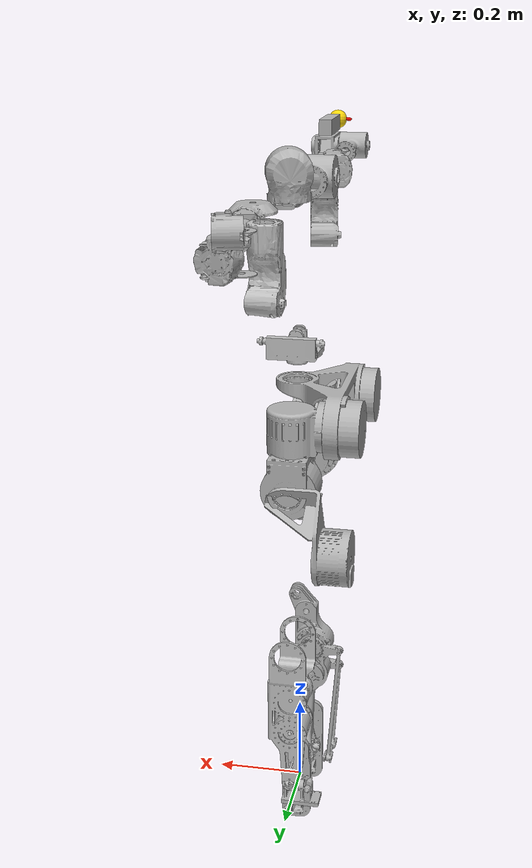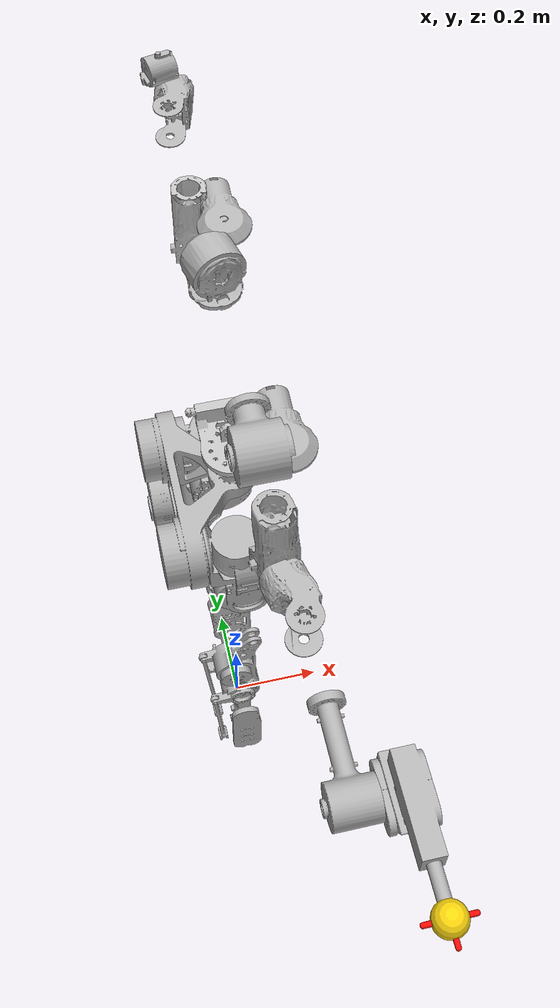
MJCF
<mujoco model="speedbot_v4_weld">
  <compiler angle="radian" meshdir="speedbot_v4/meshes/" />
  <option timestep="0.001" tolerance="1e-10" solver="Newton" jacobian="dense" cone="pyramidal" gravity="0 0 -9.81">
    <flag contact="enable" energy="enable" />
  </option>
  <size njmax="500" nconmax="1200" />
  <default>
    <light castshadow="false" />
    <geom rgba="0.784 0.784 0.784 1" />
    <default class="visual">
      <geom type="mesh" contype="0" conaffinity="0" group="1" density="0" />
    </default>
    <default class="collision">
      <geom contype="1" conaffinity="1" friction="1.0 0.3 0.3" margin="0.001" group="0" />
    </default>
    <joint damping="0.1" frictionloss="1" armature="0.01" />
  </default>
  <asset>
    <mesh name="base_link" content_type="model/stl" file="base_link.STL"/>
    <mesh name="left_hip_roll" content_type="model/stl" file="left_hip_roll.STL"/>
    <mesh name="left_hip_yaw" content_type="model/stl" file="left_hip_yaw.STL"/>
    <mesh name="left_hip_pitch" content_type="model/stl" file="left_hip_pitch.STL"/>
    <mesh name="left_knee" content_type="model/stl" file="left_knee.STL"/>
    <mesh name="left_ankle_pitch" content_type="model/stl" file="left_ankle_pitch.STL"/>
    <mesh name="left_ankle_roll" content_type="model/stl" file="left_ankle_roll.STL"/>
    <mesh name="right_hip_roll" content_type="model/stl" file="right_hip_roll.STL"/>
    <mesh name="right_hip_yaw" content_type="model/stl" file="right_hip_yaw.STL"/>
    <mesh name="right_hip_pitch" content_type="model/stl" file="right_hip_pitch.STL"/>
    <mesh name="right_knee" content_type="model/stl" file="right_knee.STL"/>
    <mesh name="right_ankle_pitch" content_type="model/stl" file="right_ankle_pitch.STL"/>
    <mesh name="right_ankle_roll" content_type="model/stl" file="right_ankle_roll.STL"/>
    <mesh name="waist_yaw" content_type="model/stl" file="waist_yaw.STL"/>
    <mesh name="left_shoulder_pitch" content_type="model/stl" file="left_shoulder_pitch.STL"/>
    <mesh name="left_shoulder_roll" content_type="model/stl" file="left_shoulder_roll.STL"/>
    <mesh name="left_shoulder_yaw" content_type="model/stl" file="left_shoulder_yaw.STL"/>
    <mesh name="left_elbow" content_type="model/stl" file="left_elbow.STL"/>
    <mesh name="left_wrist_roll" content_type="model/stl" file="left_wrist_roll.STL"/>
    <mesh name="right_shoulder_pitch" content_type="model/stl" file="right_shoulder_pitch.STL"/>
    <mesh name="right_shoulder_roll" content_type="model/stl" file="right_shoulder_roll.STL"/>
    <mesh name="right_shoulder_yaw" content_type="model/stl" file="right_shoulder_yaw.STL"/>
    <mesh name="right_elbow" content_type="model/stl" file="right_elbow.STL"/>
    <mesh name="right_wrist_roll" content_type="model/stl" file="right_wrist_roll.STL"/>
    <mesh name="welding_gun" content_type="model/stl" file="falan.STL"/>
  </asset>

  <worldbody>
    <body name="base_link" pos="0.0080635 0 1.003">
      <freejoint name="float_base" />
      <site name="imu" pos="0 0 0" quat="1 0 0 0" />
      <inertial pos="-0.1093135 -1.4179e-07 -0.041448" quat="0.68958 0.68958 0.156458 -0.156457" mass="7.4135" diaginertia="0.0292714 0.0262626 0.014902"/>
      <geom pos="-0.0080635 0 0" type="mesh" contype="0" conaffinity="0" group="1" density="0" rgba="0.69804 0.69804 0.69804 1" mesh="base_link"/>
      <geom pos="-0.0080635 0 0" type="mesh" rgba="0.69804 0.69804 0.69804 1" mesh="base_link"/>
      <body name="left_hip_roll" pos="-0.1245035 0.1225 -0.04795">
        <inertial pos="0.10837 -2.3489e-06 -0.020356" quat="-2.31903e-06 0.786727 -5.4744e-06 0.617301" mass="2.1827" diaginertia="0.00347587 0.0032228 0.00284013"/>
        <joint name="left_hip_roll_joint" pos="0 0 0" axis="1 0 0" range="-0.17 0.44" actuatorfrcrange="-267 267"/>
        <geom type="mesh" contype="0" conaffinity="0" group="1" density="0" rgba="0.69804 0.69804 0.69804 1" mesh="left_hip_roll"/>
        <body name="left_hip_yaw" pos="0.1155 0 -0.0182">
          <inertial pos="-0.00016271 -0.0040921 -0.1177" quat="0.705796 -0.0476295 0.0697462 0.703363" mass="3.3125" diaginertia="0.00629233 0.00531675 0.00516232"/>
          <joint name="left_hip_yaw_joint" pos="0 0 0" axis="0 0 1" range="-0.7 0.7" actuatorfrcrange="-121 121"/>
          <geom type="mesh" contype="0" conaffinity="0" group="1" density="0" rgba="0.69804 0.69804 0.69804 1" mesh="left_hip_yaw"/>
          <body name="left_hip_pitch" pos="0 -0.0015 -0.125">
            <inertial pos="0.0025393 0.0034884 -0.15511" quat="0.696148 -0.0392199 0.0223547 0.716477" mass="5.7187" diaginertia="0.0332183 0.0326321 0.00953413"/>
            <joint name="left_hip_pitch_joint" pos="0 0 0" axis="0 1 0" range="-1.34 1.83" actuatorfrcrange="-267 267"/>
            <geom type="mesh" contype="0" conaffinity="0" group="1" density="0" rgba="0.69804 0.69804 0.69804 1" mesh="left_hip_pitch"/>
            <body name="left_knee" pos="0 -0.034937 -0.4">
              <inertial pos="-0.017852 -6.7212e-06 -0.15577" quat="0.702401 2.77719e-05 -0.0026194 0.711777" mass="3.6902" diaginertia="0.0227294 0.0220441 0.00239045"/>
              <joint name="left_knee_joint" pos="0 0 0" axis="0 -1 0" range="-2.09 0.09" actuatorfrcrange="-267 267"/>
              <geom type="mesh" contype="0" conaffinity="0" group="1" density="0" rgba="0.75294 0.75294 0.75294 1" mesh="left_knee"/>
              <body name="left_ankle_pitch" pos="0 0.00043724 -0.387">
                <inertial pos="1.6609e-09 3.2596e-09 -6.0503e-09" quat="0.707107 0.707107 0 0" mass="0.09865" diaginertia="2.4782e-05 2.4168e-05 6.0596e-06"/>
                <joint name="left_ankle_pitch_joint" pos="0 0 0" axis="0 -1 0" range="-0.52 1.05" actuatorfrcrange="-42 42"/>
                <geom type="mesh" contype="0" conaffinity="0" group="1" density="0" rgba="0.69804 0.69804 0.69804 1" mesh="left_ankle_pitch"/>
                <body name="left_ankle_roll">
                  <inertial pos="0.039669 -5.3886e-08 -0.036778" quat="0 0.733534 0 0.679653" mass="0.60538" diaginertia="0.00265188 0.0025604 0.000326769"/>
                  <joint name="left_ankle_roll_joint" pos="0 0 0" axis="-1 0 0" range="-0.44 0.44" actuatorfrcrange="-42 42"/>
                  <geom type="mesh" contype="0" conaffinity="0" group="1" density="0" rgba="0.69804 0.69804 0.69804 1" mesh="left_ankle_roll"/>
                  <geom size="0.1125 0.04 0.0125" pos="0.046 0 -0.042" type="box" condim="4" friction="1 1 1" rgba="1 0 0 0"/>
                  <site name="lf-tc" type="box" size="0.106 0.041 0.026" pos="0.046 0 -0.042" rgba="0 1 0 0" />
                </body>
              </body>
            </body>
          </body>
        </body>
      </body>
      <body name="right_hip_roll" pos="-0.1245035 -0.1225 -0.04795">
        <inertial pos="0.10837 -2.3489e-06 -0.020356" quat="-2.31903e-06 0.786727 -5.4744e-06 0.617301" mass="2.1827" diaginertia="0.00347587 0.0032228 0.00284013"/>
        <joint name="right_hip_roll_joint" pos="0 0 0" axis="1 0 0" range="-0.44 0.17" actuatorfrcrange="-267 267"/>
        <geom type="mesh" contype="0" conaffinity="0" group="1" density="0" rgba="0.69804 0.69804 0.69804 1" mesh="right_hip_roll"/>
        <body name="right_hip_yaw" pos="0.1155 0 -0.0182">
          <inertial pos="-0.00016274 0.0040921 -0.1177" quat="0.703362 0.0697434 -0.0476322 0.705797" mass="3.3125" diaginertia="0.00629233 0.00531675 0.00516232"/>
          <joint name="right_hip_yaw_joint" pos="0 0 0" axis="0 0 1" range="-0.7 0.7" actuatorfrcrange="-121 121"/>
          <geom type="mesh" contype="0" conaffinity="0" group="1" density="0" rgba="0.69804 0.69804 0.69804 1" mesh="right_hip_yaw"/>
          <body name="right_hip_pitch" pos="0 0.0015 -0.125">
            <inertial pos="0.0025393 -0.0034884 -0.15511" quat="0.716393 0.0223445 -0.0392287 0.696235" mass="5.7187" diaginertia="0.0332183 0.0326321 0.0095343"/>
            <joint name="right_hip_pitch_joint" pos="0 0 0" axis="0 1 0" range="-1.34 1.83" actuatorfrcrange="-267 267"/>
            <geom type="mesh" contype="0" conaffinity="0" group="1" density="0" rgba="0.69804 0.69804 0.69804 1" mesh="right_hip_pitch"/>
            <body name="right_knee" pos="0 0.034937 -0.4">
              <inertial pos="-0.017852 6.7212e-06 -0.15577" quat="0.711798 -0.00262139 2.52241e-05 0.702379" mass="3.6902" diaginertia="0.0227294 0.0220441 0.00239045"/>
              <joint name="right_knee_joint" pos="0 0 0" axis="0 -1 0" range="-2.09 0.09" actuatorfrcrange="-267 267"/>
              <geom type="mesh" contype="0" conaffinity="0" group="1" density="0" rgba="0.69804 0.69804 0.69804 1" mesh="right_knee"/>
              <body name="right_ankle_pitch" pos="0 -0.00043724 -0.387">
                <inertial pos="1.6609e-09 3.2596e-09 -6.0503e-09" quat="0.707107 0.707107 0 0" mass="0.09865" diaginertia="2.4782e-05 2.4168e-05 6.0596e-06"/>
                <joint name="right_ankle_pitch_joint" pos="0 0 0" axis="0 -1 0" range="-0.52 1.05" actuatorfrcrange="-42 42"/>
                <geom type="mesh" contype="0" conaffinity="0" group="1" density="0" rgba="0.69804 0.69804 0.69804 1" mesh="right_ankle_pitch"/>
                <body name="right_ankle_roll">
                  <inertial pos="0.039669 -5.3901e-08 -0.036778" quat="0 0.733534 0 0.679653" mass="0.60538" diaginertia="0.00265188 0.0025604 0.000326769"/>
                  <joint name="right_ankle_roll_joint" pos="0 0 0" axis="-1 0 0" range="-0.44 0.44" actuatorfrcrange="-42 42"/>
                  <geom type="mesh" contype="0" conaffinity="0" group="1" density="0" rgba="0.69804 0.69804 0.69804 1" mesh="right_ankle_roll"/>
                  <geom size="0.1125 0.04 0.0125" pos="0.046 0 -0.042" type="box" condim="4" friction="1 1 1" rgba="1 0 0 0"/>
                  <site name="rf-tc" type="box" size="0.106 0.041 0.026" pos="0.046 0 -0.042" rgba="0 1 0 0" />
                </body>
              </body>
            </body>
          </body>
        </body>
      </body>
      <body name="waist_yaw" pos="0 0 0.0573">
        <inertial pos="0.001283 -7.589e-05 0.20559" quat="0.501725 0.497653 -0.502492 0.498112" mass="10.4394" diaginertia="0.033042 0.0323261 0.0304469"/>
        <geom type="mesh" contype="0" conaffinity="0" group="1" density="0" rgba="0.75294 0.75294 0.75294 1" mesh="waist_yaw"/>
        <geom type="mesh" rgba="0.75294 0.75294 0.75294 1" mesh="waist_yaw"/>
        <body name="upper_body_link" pos="0 0 0.3">
          <body name="left_shoulder_pitch" pos="0 0.098693 0.07088">
            <inertial pos="0.0091062 0.13568 0.00087007" quat="0.705814 0.705815 -0.0427311 -0.0427293" mass="1.4073" diaginertia="0.00186382 0.0017462 0.00138138"/>
            <joint name="left_shoulder_pitch_joint" pos="0 0 0" axis="0 1 0" range="-3.09 2.67" actuatorfrcrange="-60 60"/>
            <geom type="mesh" contype="0" conaffinity="0" group="1" density="0" rgba="0.69804 0.69804 0.69804 1" mesh="left_shoulder_pitch"/>
            <body name="left_shoulder_roll" pos="0.0444 0.14081 0.00087012">
              <inertial pos="-0.044206 0.091886 2.9541e-07" quat="0.434132 0.558013 -0.434293 0.558158" mass="1.0231" diaginertia="0.0013318 0.00131096 0.000682828"/>
              <joint name="left_shoulder_roll_joint" pos="0 0 0" axis="-1 0 0" range="-1.59 2.25" actuatorfrcrange="-60 60"/>
              <geom type="mesh" contype="0" conaffinity="0" group="1" density="0" rgba="0.69804 0.69804 0.69804 1" mesh="left_shoulder_roll"/>
              <body name="left_shoulder_yaw" pos="-0.0444 0.103 0">
                <inertial pos="-0.00062283 0.18132 0.008027" quat="0.38132 0.400028 -0.613332 0.564267" mass="1.222" diaginertia="0.00254591 0.00253872 0.00101317"/>
                <joint name="left_shoulder_yaw_joint" pos="0 0 0" axis="0 1 0" range="-2.62 2.62" actuatorfrcrange="-60 60"/>
                <geom type="mesh" contype="0" conaffinity="0" group="1" density="0" rgba="0.75294 0.75294 0.75294 1" mesh="left_shoulder_yaw"/>
                <body name="left_elbow" pos="0 0.197 0.0135">
                  <inertial pos="-4.9236e-08 0.080341 -0.013515" quat="0.791621 0.611013 -3.90561e-05 4.75426e-05" mass="0.73325" diaginertia="0.00086196 0.000834991 0.000390249"/>
                  <joint name="left_elbow_joint" pos="0 0 0" axis="0 0 1" range="-2.09 1.05" actuatorfrcrange="-40 40"/>
                  <geom type="mesh" contype="0" conaffinity="0" group="1" density="0" rgba="0.69804 0.69804 0.69804 1" mesh="left_elbow"/>
                  <body name="left_wrist_roll" pos="0 0.0896 -0.0135">
                    <inertial pos="0.0029058 0.16387 -1.135e-05" quat="0.518412 0.480333 -0.518971 0.48083" mass="0.63743" diaginertia="0.0011544 0.00112475 0.000340641"/>
                    <joint name="left_wrist_roll_joint" pos="0 0 0" axis="0 1 0" range="-1.97 1.97" actuatorfrcrange="-20 20"/>
                    <geom type="mesh" contype="0" conaffinity="0" group="1" density="0" rgba="0.69804 0.69804 0.69804 1" mesh="left_wrist_roll"/>
                  </body>
                </body>
              </body>
            </body>
          </body>
          <body name="right_shoulder_pitch" pos="0 -0.098693 0.07088">
            <inertial pos="0.0091062 -0.13568 0.00087017" quat="0.705814 0.705815 0.0427311 0.0427293" mass="1.4073" diaginertia="0.00186382 0.0017462 0.00138138"/>
            <joint name="right_shoulder_pitch_joint" pos="0 0 0" axis="0 -1 0" range="-3.09 2.67" actuatorfrcrange="-60 60"/>
            <geom type="mesh" contype="0" conaffinity="0" group="1" density="0" rgba="0.69804 0.69804 0.69804 1" mesh="right_shoulder_pitch"/>
            <body name="right_shoulder_roll" pos="0.0444 -0.14081 0.00087012">
              <inertial pos="-0.044206 -0.091886 -2.9542e-07" quat="0.558158 0.434293 -0.558013 0.434132" mass="1.0231" diaginertia="0.0013318 0.00131096 0.000682828"/>
              <joint name="right_shoulder_roll_joint" pos="0 0 0" axis="-1 0 0" range="-2.25 1.59" actuatorfrcrange="-60 60"/>
              <geom type="mesh" contype="0" conaffinity="0" group="1" density="0" rgba="0.69804 0.69804 0.69804 1" mesh="right_shoulder_roll"/>
              <body name="right_shoulder_yaw" pos="-0.0444 -0.103 0">
                <inertial pos="-0.00062239 -0.18132 0.0080269" quat="0.40066 0.381894 -0.563869 0.612927" mass="1.222" diaginertia="0.0025459 0.00253873 0.00101317"/>
                <joint name="right_shoulder_yaw_joint" pos="0 0 0" axis="0 -1 0" range="-2.62 2.62" actuatorfrcrange="-60 60"/>
                <geom type="mesh" contype="0" conaffinity="0" group="1" density="0" rgba="0.69804 0.69804 0.69804 1" mesh="right_shoulder_yaw"/>
                <body name="right_elbow" pos="0 -0.197 0.0135">
                  <inertial pos="4.9236e-08 -0.080341 -0.013515" quat="0.611013 0.791621 4.75426e-05 -3.90561e-05" mass="0.73325" diaginertia="0.00086196 0.000834991 0.000390249"/>
                  <joint name="right_elbow_joint" pos="0 0 0" axis="0 0 1" range="-1.05 2.09" actuatorfrcrange="-40 40"/>
                  <geom type="mesh" contype="0" conaffinity="0" group="1" density="0" rgba="0.69804 0.69804 0.69804 1" mesh="right_elbow"/>
                  <body name="right_wrist_roll" pos="0 -0.1221 -0.0135">
                    <inertial pos="0.0029058 -0.13137 1.135e-05" quat="0.48083 0.518971 -0.480333 0.518412" mass="0.63743" diaginertia="0.0011544 0.00112475 0.000340641"/>
                    <joint name="right_wrist_roll_joint" pos="0 0 0" axis="0 1 0" range="-1.97 1.97" actuatorfrcrange="-20 20"/>
                    <geom type="mesh" contype="0" conaffinity="0" group="1" density="0" rgba="0.69804 0.69804 0.69804 1" mesh="right_wrist_roll"/>
                    <body name="welding_gun" pos="0.0375 -0.1511 0">
                      <inertial pos="0 0 0" mass="0.5" diaginertia="0.0001 0.0001 0.0001"/>
                      <joint name="welding_gun_joint" pos="0 0 0" axis="1 0 0" range="-3.14159 3.14159" actuatorfrcrange="-20 20"/>
                      <geom type="mesh" contype="0" conaffinity="0" group="1" density="0" rgba="0.69804 0.69804 0.69804 1" mesh="welding_gun"/>
                      <site name="welding_tcp" pos="0.0346 -0.1817 0.048" euler="1.5708 0 0" size="0.008" rgba="1 0.85 0.05 1"/>
                      <geom name="weld_tcp_marker" type="sphere" pos="0.0346 -0.1817 0.048" size="0.025"
                            contype="0" conaffinity="0" density="0" group="1" rgba="1 0.85 0.05 1"/>
                      <geom name="weld_tcp_marker_x" type="capsule" fromto="-0.0004 -0.1817 0.048 0.0696 -0.1817 0.048" size="0.004"
                            contype="0" conaffinity="0" density="0" group="1" rgba="1 0.05 0.02 1"/>
                      <geom name="weld_tcp_marker_y" type="capsule" fromto="0.0346 -0.2167 0.048 0.0346 -0.1467 0.048" size="0.004"
                            contype="0" conaffinity="0" density="0" group="1" rgba="1 0.05 0.02 1"/>
                    </body>
                  </body>
                </body>
              </body>
            </body>
          </body>
        </body>
      </body>
    </body>
  </worldbody>
  <contact>
    <exclude name="ex_base_link_left_hip_roll" body1="base_link" body2="left_hip_roll" />
    <exclude name="ex_left_hip_roll_left_hip_yaw" body1="left_hip_roll" body2="left_hip_yaw" />
    <exclude name="ex_left_hip_yaw_left_hip_pitch" body1="left_hip_yaw" body2="left_hip_pitch" />
    <exclude name="ex_left_hip_pitch_left_knee" body1="left_hip_pitch" body2="left_knee" />
    <exclude name="ex_left_knee_left_ankle_pitch" body1="left_knee" body2="left_ankle_pitch" />
    <exclude name="ex_left_ankle_pitch_left_ankle_roll" body1="left_ankle_pitch" body2="left_ankle_roll" />
    <exclude name="ex_base_link_right_hip_roll" body1="base_link" body2="right_hip_roll" />
    <exclude name="ex_right_hip_roll_right_hip_yaw" body1="right_hip_roll" body2="right_hip_yaw" />
    <exclude name="ex_right_hip_yaw_right_hip_pitch" body1="right_hip_yaw" body2="right_hip_pitch" />
    <exclude name="ex_right_hip_pitch_right_knee" body1="right_hip_pitch" body2="right_knee" />
    <exclude name="ex_right_knee_right_ankle_pitch" body1="right_knee" body2="right_ankle_pitch" />
    <exclude name="ex_right_ankle_pitch_right_ankle_roll" body1="right_ankle_pitch" body2="right_ankle_roll" />
    <exclude name="ex_base_link_waist_yaw" body1="base_link" body2="waist_yaw" />
    <exclude name="ex_upper_body_link_left_shoulder_pitch" body1="upper_body_link" body2="left_shoulder_pitch" />
    <exclude name="ex_left_shoulder_pitch_left_shoulder_roll" body1="left_shoulder_pitch" body2="left_shoulder_roll" />
    <exclude name="ex_left_shoulder_roll_left_shoulder_yaw" body1="left_shoulder_roll" body2="left_shoulder_yaw" />
    <exclude name="ex_left_shoulder_yaw_left_elbow" body1="left_shoulder_yaw" body2="left_elbow" />
    <exclude name="ex_left_elbow_left_wrist_roll" body1="left_elbow" body2="left_wrist_roll" />
    <exclude name="ex_upper_body_link_right_shoulder_pitch" body1="upper_body_link" body2="right_shoulder_pitch" />
    <exclude name="ex_right_shoulder_pitch_right_shoulder_roll" body1="right_shoulder_pitch" body2="right_shoulder_roll" />
    <exclude name="ex_right_shoulder_roll_right_shoulder_yaw" body1="right_shoulder_roll" body2="right_shoulder_yaw" />
    <exclude name="ex_right_shoulder_yaw_right_elbow" body1="right_shoulder_yaw" body2="right_elbow" />
    <exclude name="ex_right_elbow_right_wrist_roll" body1="right_elbow" body2="right_wrist_roll" />
    <exclude name="ex_right_wrist_roll_welding_gun" body1="right_wrist_roll" body2="welding_gun" />
    <exclude name="ex_waist_yaw_upper_body_link" body1="waist_yaw" body2="upper_body_link" />
  </contact>
  <actuator>
    <motor name="M_left_hip_roll_joint" joint="left_hip_roll_joint" gear="1" ctrllimited="true" ctrlrange="-267 267" />
    <motor name="M_left_hip_yaw_joint" joint="left_hip_yaw_joint" gear="1" ctrllimited="true" ctrlrange="-121 121" />
    <motor name="M_left_hip_pitch_joint" joint="left_hip_pitch_joint" gear="1" ctrllimited="true" ctrlrange="-267 267" />
    <motor name="M_left_knee_joint" joint="left_knee_joint" gear="1" ctrllimited="true" ctrlrange="-267 267" />
    <motor name="M_left_ankle_pitch_joint" joint="left_ankle_pitch_joint" gear="1" ctrllimited="true" ctrlrange="-42 42" />
    <motor name="M_left_ankle_roll_joint" joint="left_ankle_roll_joint" gear="1" ctrllimited="true" ctrlrange="-42 42" />
    <motor name="M_right_hip_roll_joint" joint="right_hip_roll_joint" gear="1" ctrllimited="true" ctrlrange="-267 267" />
    <motor name="M_right_hip_yaw_joint" joint="right_hip_yaw_joint" gear="1" ctrllimited="true" ctrlrange="-121 121" />
    <motor name="M_right_hip_pitch_joint" joint="right_hip_pitch_joint" gear="1" ctrllimited="true" ctrlrange="-267 267" />
    <motor name="M_right_knee_joint" joint="right_knee_joint" gear="1" ctrllimited="true" ctrlrange="-267 267" />
    <motor name="M_right_ankle_pitch_joint" joint="right_ankle_pitch_joint" gear="1" ctrllimited="true" ctrlrange="-42 42" />
    <motor name="M_right_ankle_roll_joint" joint="right_ankle_roll_joint" gear="1" ctrllimited="true" ctrlrange="-42 42" />
    <motor name="M_left_shoulder_pitch_joint" joint="left_shoulder_pitch_joint" gear="1" ctrllimited="true" ctrlrange="-60 60" />
    <motor name="M_left_shoulder_roll_joint" joint="left_shoulder_roll_joint" gear="1" ctrllimited="true" ctrlrange="-60 60" />
    <motor name="M_left_shoulder_yaw_joint" joint="left_shoulder_yaw_joint" gear="1" ctrllimited="true" ctrlrange="-60 60" />
    <motor name="M_left_elbow_joint" joint="left_elbow_joint" gear="1" ctrllimited="true" ctrlrange="-40 40" />
    <motor name="M_left_wrist_roll_joint" joint="left_wrist_roll_joint" gear="1" ctrllimited="true" ctrlrange="-20 20" />
    <motor name="M_right_shoulder_pitch_joint" joint="right_shoulder_pitch_joint" gear="1" ctrllimited="true" ctrlrange="-60 60" />
    <motor name="M_right_shoulder_roll_joint" joint="right_shoulder_roll_joint" gear="1" ctrllimited="true" ctrlrange="-60 60" />
    <motor name="M_right_shoulder_yaw_joint" joint="right_shoulder_yaw_joint" gear="1" ctrllimited="true" ctrlrange="-60 60" />
    <motor name="M_right_elbow_joint" joint="right_elbow_joint" gear="1" ctrllimited="true" ctrlrange="-40 40" />
    <motor name="M_right_wrist_roll_joint" joint="right_wrist_roll_joint" gear="1" ctrllimited="true" ctrlrange="-20 20" />
    <motor name="M_welding_gun_joint" joint="welding_gun_joint" gear="1" ctrllimited="true" ctrlrange="-20 20" />
  </actuator>
  <sensor>
    <framequat name="baselink-quat" objtype="site" objname="imu" />
    <velocimeter name="baselink-velocity" site="imu" />
    <gyro name="baselink-gyro" site="imu" />
    <accelerometer name="baselink-baseAcc" site="imu" />
    <touch name="lf-touch" site="lf-tc" />
    <touch name="rf-touch" site="rf-tc" />
  </sensor>
</mujoco>
